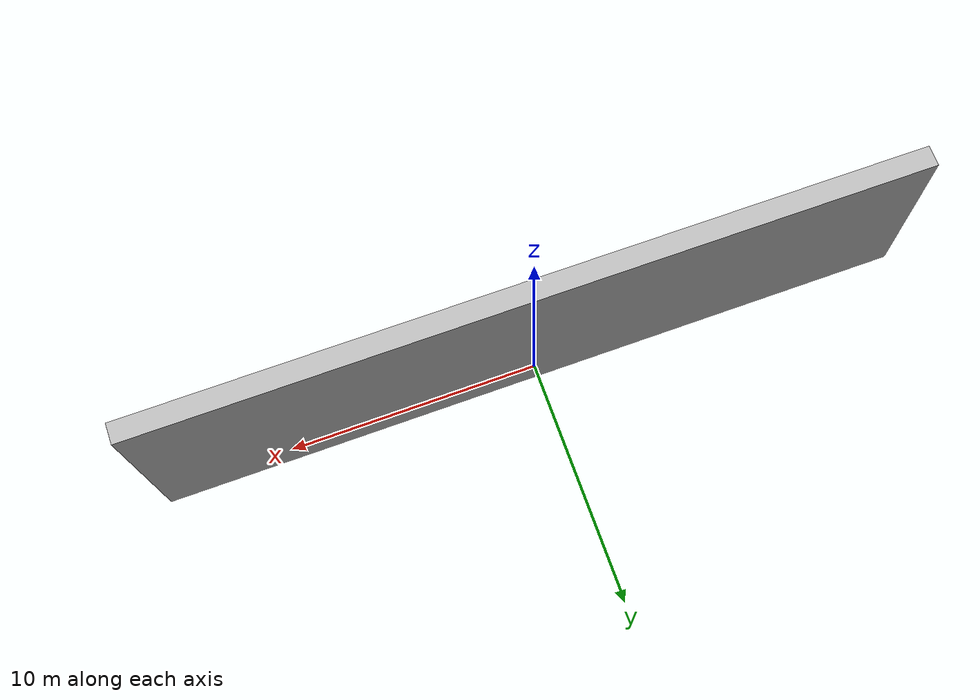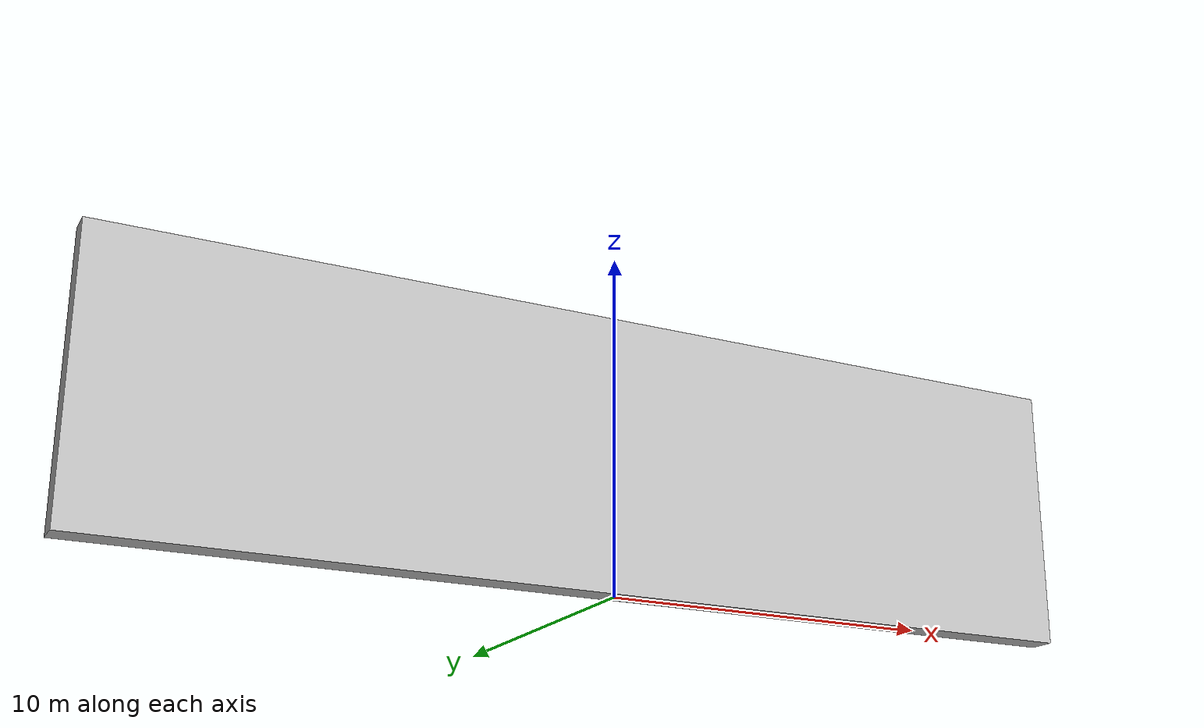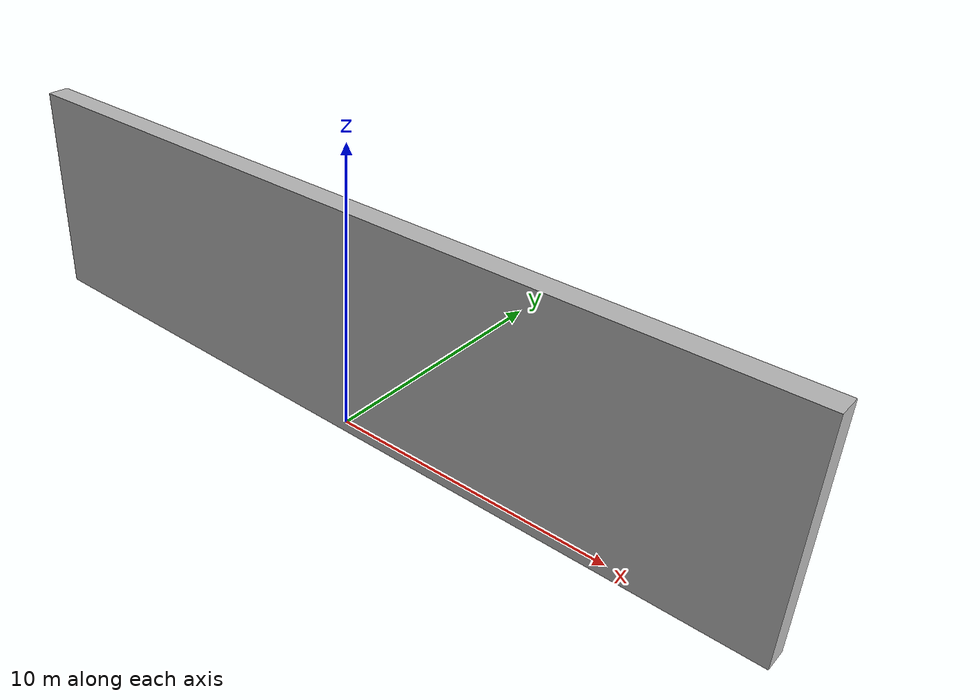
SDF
<?xml version="1.0" ?>
<sdf version="1.5">
  <model name="maze_wall">
    <static>true</static>
    <link name="link">
      <pose>0 0 4 0 0 0</pose>
      <collision name="collision_m">
        <geometry>
          <box>
            <size>30 0.8 8</size>
          </box>
        </geometry>
      </collision>
      <visual name="visual_m">
        <geometry>
          <box>
            <size>30 0.8 8</size>
          </box>
        </geometry>
        <material>
          <script>
            <uri>model://maze_wall/materials/scripts</uri>
            <uri>model://maze_wall/materials/textures</uri>
            <name>vrc/maze_wall</name>
          </script>
        </material>
      </visual>
    </link>
  </model>
</sdf>
